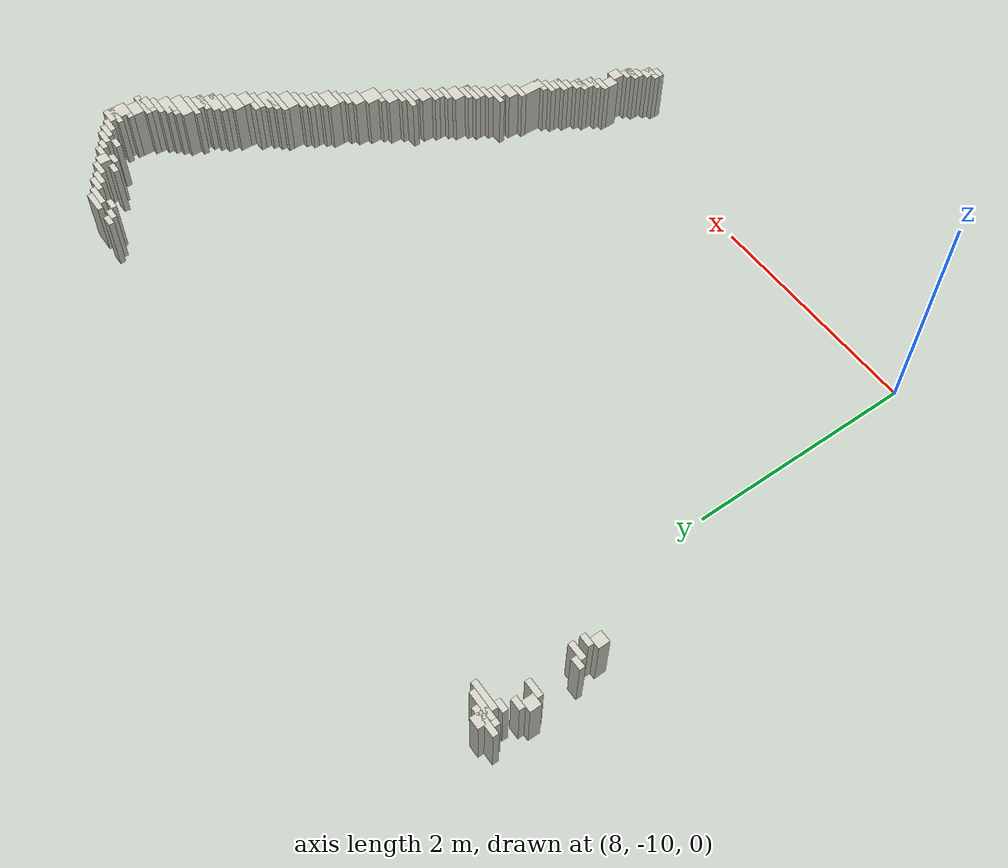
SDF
<sdf version="1.7">
 <world name="my_map_world">
  <model name="wall_392">
   <static>1</static>
   <pose>7.5 -5.625 0.25 0 -0 0</pose>
   <link name="link">
    <collision name="collision"><geometry><box><size>0.1 0.15 0.5</size></box></geometry></collision>
    <visual name="visual">
     <geometry><box><size>0.1 0.15 0.5</size></box></geometry>
     <material>
      <script><uri>file://media/materials/scripts/gazebo.material</uri><name>Gazebo/PaintedWall</name></script>
     </material>
    </visual>
   </link>
  </model>
  <model name="wall_393">
   <static>1</static>
   <pose>12.8 -5.575 0.25 0 -0 0</pose>
   <link name="link">
    <collision name="collision"><geometry><box><size>0.1 0.05 0.5</size></box></geometry></collision>
    <visual name="visual">
     <geometry><box><size>0.1 0.05 0.5</size></box></geometry>
     <material>
      <script><uri>file://media/materials/scripts/gazebo.material</uri><name>Gazebo/PaintedWall</name></script>
     </material>
    </visual>
   </link>
  </model>
  <model name="wall_394">
   <static>1</static>
   <pose>13.05 -5.575 0.25 0 -0 0</pose>
   <link name="link">
    <collision name="collision"><geometry><box><size>0.2 0.05 0.5</size></box></geometry></collision>
    <visual name="visual">
     <geometry><box><size>0.2 0.05 0.5</size></box></geometry>
     <material>
      <script><uri>file://media/materials/scripts/gazebo.material</uri><name>Gazebo/PaintedWall</name></script>
     </material>
    </visual>
   </link>
  </model>
  <model name="wall_395">
   <static>1</static>
   <pose>7.475 -5.625 0.25 0 -0 0</pose>
   <link name="link">
    <collision name="collision"><geometry><box><size>0.25 0.05 0.5</size></box></geometry></collision>
    <visual name="visual">
     <geometry><box><size>0.25 0.05 0.5</size></box></geometry>
     <material>
      <script><uri>file://media/materials/scripts/gazebo.material</uri><name>Gazebo/PaintedWall</name></script>
     </material>
    </visual>
   </link>
  </model>
  <model name="wall_396">
   <static>1</static>
   <pose>12.85 -5.625 0.25 0 -0 0</pose>
   <link name="link">
    <collision name="collision"><geometry><box><size>0.1 0.05 0.5</size></box></geometry></collision>
    <visual name="visual">
     <geometry><box><size>0.1 0.05 0.5</size></box></geometry>
     <material>
      <script><uri>file://media/materials/scripts/gazebo.material</uri><name>Gazebo/PaintedWall</name></script>
     </material>
    </visual>
   </link>
  </model>
  <model name="wall_397">
   <static>1</static>
   <pose>13.1 -5.625 0.25 0 -0 0</pose>
   <link name="link">
    <collision name="collision"><geometry><box><size>0.2 0.05 0.5</size></box></geometry></collision>
    <visual name="visual">
     <geometry><box><size>0.2 0.05 0.5</size></box></geometry>
     <material>
      <script><uri>file://media/materials/scripts/gazebo.material</uri><name>Gazebo/PaintedWall</name></script>
     </material>
    </visual>
   </link>
  </model>
  <model name="wall_398">
   <static>1</static>
   <pose>7.55 -5.675 0.25 0 -0 0</pose>
   <link name="link">
    <collision name="collision"><geometry><box><size>0.3 0.05 0.5</size></box></geometry></collision>
    <visual name="visual">
     <geometry><box><size>0.3 0.05 0.5</size></box></geometry>
     <material>
      <script><uri>file://media/materials/scripts/gazebo.material</uri><name>Gazebo/PaintedWall</name></script>
     </material>
    </visual>
   </link>
  </model>
  <model name="wall_399">
   <static>1</static>
   <pose>12.95 -5.675 0.25 0 -0 0</pose>
   <link name="link">
    <collision name="collision"><geometry><box><size>0.1 0.05 0.5</size></box></geometry></collision>
    <visual name="visual">
     <geometry><box><size>0.1 0.05 0.5</size></box></geometry>
     <material>
      <script><uri>file://media/materials/scripts/gazebo.material</uri><name>Gazebo/PaintedWall</name></script>
     </material>
    </visual>
   </link>
  </model>
  <model name="wall_400">
   <static>1</static>
   <pose>13.225 -5.675 0.25 0 -0 0</pose>
   <link name="link">
    <collision name="collision"><geometry><box><size>0.15 0.05 0.5</size></box></geometry></collision>
    <visual name="visual">
     <geometry><box><size>0.15 0.05 0.5</size></box></geometry>
     <material>
      <script><uri>file://media/materials/scripts/gazebo.material</uri><name>Gazebo/PaintedWall</name></script>
     </material>
    </visual>
   </link>
  </model>
  <model name="wall_401">
   <static>1</static>
   <pose>7.625 -5.725 0.25 0 -0 0</pose>
   <link name="link">
    <collision name="collision"><geometry><box><size>0.25 0.05 0.5</size></box></geometry></collision>
    <visual name="visual">
     <geometry><box><size>0.25 0.05 0.5</size></box></geometry>
     <material>
      <script><uri>file://media/materials/scripts/gazebo.material</uri><name>Gazebo/PaintedWall</name></script>
     </material>
    </visual>
   </link>
  </model>
  <model name="wall_402">
   <static>1</static>
   <pose>13.275 -5.725 0.25 0 -0 0</pose>
   <link name="link">
    <collision name="collision"><geometry><box><size>0.15 0.05 0.5</size></box></geometry></collision>
    <visual name="visual">
     <geometry><box><size>0.15 0.05 0.5</size></box></geometry>
     <material>
      <script><uri>file://media/materials/scripts/gazebo.material</uri><name>Gazebo/PaintedWall</name></script>
     </material>
    </visual>
   </link>
  </model>
  <model name="wall_403">
   <static>1</static>
   <pose>7.5 -5.775 0.25 0 -0 0</pose>
   <link name="link">
    <collision name="collision"><geometry><box><size>0.1 0.05 0.5</size></box></geometry></collision>
    <visual name="visual">
     <geometry><box><size>0.1 0.05 0.5</size></box></geometry>
     <material>
      <script><uri>file://media/materials/scripts/gazebo.material</uri><name>Gazebo/PaintedWall</name></script>
     </material>
    </visual>
   </link>
  </model>
  <model name="wall_404">
   <static>1</static>
   <pose>13.375 -5.775 0.25 0 -0 0</pose>
   <link name="link">
    <collision name="collision"><geometry><box><size>0.15 0.05 0.5</size></box></geometry></collision>
    <visual name="visual">
     <geometry><box><size>0.15 0.05 0.5</size></box></geometry>
     <material>
      <script><uri>file://media/materials/scripts/gazebo.material</uri><name>Gazebo/PaintedWall</name></script>
     </material>
    </visual>
   </link>
  </model>
  <model name="wall_405">
   <static>1</static>
   <pose>13.45 -5.85 0.25 0 -0 0</pose>
   <link name="link">
    <collision name="collision"><geometry><box><size>0.1 0.1 0.5</size></box></geometry></collision>
    <visual name="visual">
     <geometry><box><size>0.1 0.1 0.5</size></box></geometry>
     <material>
      <script><uri>file://media/materials/scripts/gazebo.material</uri><name>Gazebo/PaintedWall</name></script>
     </material>
    </visual>
   </link>
  </model>
  <model name="wall_406">
   <static>1</static>
   <pose>7.45 -5.875 0.25 0 -0 0</pose>
   <link name="link">
    <collision name="collision"><geometry><box><size>0.1 0.05 0.5</size></box></geometry></collision>
    <visual name="visual">
     <geometry><box><size>0.1 0.05 0.5</size></box></geometry>
     <material>
      <script><uri>file://media/materials/scripts/gazebo.material</uri><name>Gazebo/PaintedWall</name></script>
     </material>
    </visual>
   </link>
  </model>
  <model name="wall_407">
   <static>1</static>
   <pose>13.3 -5.875 0.25 0 -0 0</pose>
   <link name="link">
    <collision name="collision"><geometry><box><size>0.1 0.05 0.5</size></box></geometry></collision>
    <visual name="visual">
     <geometry><box><size>0.1 0.05 0.5</size></box></geometry>
     <material>
      <script><uri>file://media/materials/scripts/gazebo.material</uri><name>Gazebo/PaintedWall</name></script>
     </material>
    </visual>
   </link>
  </model>
  <model name="wall_408">
   <static>1</static>
   <pose>13.55 -5.875 0.25 0 -0 0</pose>
   <link name="link">
    <collision name="collision"><geometry><box><size>0.1 0.05 0.5</size></box></geometry></collision>
    <visual name="visual">
     <geometry><box><size>0.1 0.05 0.5</size></box></geometry>
     <material>
      <script><uri>file://media/materials/scripts/gazebo.material</uri><name>Gazebo/PaintedWall</name></script>
     </material>
    </visual>
   </link>
  </model>
  <model name="wall_409">
   <static>1</static>
   <pose>7.4 -5.95 0.25 0 -0 0</pose>
   <link name="link">
    <collision name="collision"><geometry><box><size>0.1 0.1 0.5</size></box></geometry></collision>
    <visual name="visual">
     <geometry><box><size>0.1 0.1 0.5</size></box></geometry>
     <material>
      <script><uri>file://media/materials/scripts/gazebo.material</uri><name>Gazebo/PaintedWall</name></script>
     </material>
    </visual>
   </link>
  </model>
  <model name="wall_410">
   <static>1</static>
   <pose>13.4 -5.925 0.25 0 -0 0</pose>
   <link name="link">
    <collision name="collision"><geometry><box><size>0.1 0.05 0.5</size></box></geometry></collision>
    <visual name="visual">
     <geometry><box><size>0.1 0.05 0.5</size></box></geometry>
     <material>
      <script><uri>file://media/materials/scripts/gazebo.material</uri><name>Gazebo/PaintedWall</name></script>
     </material>
    </visual>
   </link>
  </model>
  <model name="wall_411">
   <static>1</static>
   <pose>13.6 -5.925 0.25 0 -0 0</pose>
   <link name="link">
    <collision name="collision"><geometry><box><size>0.1 0.05 0.5</size></box></geometry></collision>
    <visual name="visual">
     <geometry><box><size>0.1 0.05 0.5</size></box></geometry>
     <material>
      <script><uri>file://media/materials/scripts/gazebo.material</uri><name>Gazebo/PaintedWall</name></script>
     </material>
    </visual>
   </link>
  </model>
  <model name="wall_413">
   <static>1</static>
   <pose>13.675 -5.975 0.25 0 -0 0</pose>
   <link name="link">
    <collision name="collision"><geometry><box><size>0.15 0.05 0.5</size></box></geometry></collision>
    <visual name="visual">
     <geometry><box><size>0.15 0.05 0.5</size></box></geometry>
     <material>
      <script><uri>file://media/materials/scripts/gazebo.material</uri><name>Gazebo/PaintedWall</name></script>
     </material>
    </visual>
   </link>
  </model>
  <model name="wall_415">
   <static>1</static>
   <pose>7.475 -6.025 0.25 0 -0 0</pose>
   <link name="link">
    <collision name="collision"><geometry><box><size>0.15 0.05 0.5</size></box></geometry></collision>
    <visual name="visual">
     <geometry><box><size>0.15 0.05 0.5</size></box></geometry>
     <material>
      <script><uri>file://media/materials/scripts/gazebo.material</uri><name>Gazebo/PaintedWall</name></script>
     </material>
    </visual>
   </link>
  </model>
  <model name="wall_416">
   <static>1</static>
   <pose>13.55 -6.025 0.25 0 -0 0</pose>
   <link name="link">
    <collision name="collision"><geometry><box><size>0.1 0.05 0.5</size></box></geometry></collision>
    <visual name="visual">
     <geometry><box><size>0.1 0.05 0.5</size></box></geometry>
     <material>
      <script><uri>file://media/materials/scripts/gazebo.material</uri><name>Gazebo/PaintedWall</name></script>
     </material>
    </visual>
   </link>
  </model>
  <model name="wall_417">
   <static>1</static>
   <pose>13.725 -6.025 0.25 0 -0 0</pose>
   <link name="link">
    <collision name="collision"><geometry><box><size>0.15 0.05 0.5</size></box></geometry></collision>
    <visual name="visual">
     <geometry><box><size>0.15 0.05 0.5</size></box></geometry>
     <material>
      <script><uri>file://media/materials/scripts/gazebo.material</uri><name>Gazebo/PaintedWall</name></script>
     </material>
    </visual>
   </link>
  </model>
  <model name="wall_418">
   <static>1</static>
   <pose>13.775 -6.075 0.25 0 -0 0</pose>
   <link name="link">
    <collision name="collision"><geometry><box><size>0.15 0.05 0.5</size></box></geometry></collision>
    <visual name="visual">
     <geometry><box><size>0.15 0.05 0.5</size></box></geometry>
     <material>
      <script><uri>file://media/materials/scripts/gazebo.material</uri><name>Gazebo/PaintedWall</name></script>
     </material>
    </visual>
   </link>
  </model>
  <model name="wall_420">
   <static>1</static>
   <pose>13.875 -6.2 0.25 0 -0 0</pose>
   <link name="link">
    <collision name="collision"><geometry><box><size>0.15 0.2 0.5</size></box></geometry></collision>
    <visual name="visual">
     <geometry><box><size>0.15 0.2 0.5</size></box></geometry>
     <material>
      <script><uri>file://media/materials/scripts/gazebo.material</uri><name>Gazebo/PaintedWall</name></script>
     </material>
    </visual>
   </link>
  </model>
  <model name="wall_422">
   <static>1</static>
   <pose>13.85 -6.175 0.25 0 -0 0</pose>
   <link name="link">
    <collision name="collision"><geometry><box><size>0.2 0.05 0.5</size></box></geometry></collision>
    <visual name="visual">
     <geometry><box><size>0.2 0.05 0.5</size></box></geometry>
     <material>
      <script><uri>file://media/materials/scripts/gazebo.material</uri><name>Gazebo/PaintedWall</name></script>
     </material>
    </visual>
   </link>
  </model>
  <model name="wall_423">
   <static>1</static>
   <pose>13.85 -6.275 0.25 0 -0 0</pose>
   <link name="link">
    <collision name="collision"><geometry><box><size>0.2 0.05 0.5</size></box></geometry></collision>
    <visual name="visual">
     <geometry><box><size>0.2 0.05 0.5</size></box></geometry>
     <material>
      <script><uri>file://media/materials/scripts/gazebo.material</uri><name>Gazebo/PaintedWall</name></script>
     </material>
    </visual>
   </link>
  </model>
  <model name="wall_425">
   <static>1</static>
   <pose>13.825 -6.4 0.25 0 -0 0</pose>
   <link name="link">
    <collision name="collision"><geometry><box><size>0.15 0.2 0.5</size></box></geometry></collision>
    <visual name="visual">
     <geometry><box><size>0.15 0.2 0.5</size></box></geometry>
     <material>
      <script><uri>file://media/materials/scripts/gazebo.material</uri><name>Gazebo/PaintedWall</name></script>
     </material>
    </visual>
   </link>
  </model>
  <model name="wall_427">
   <static>1</static>
   <pose>7.45 -6.375 0.25 0 -0 0</pose>
   <link name="link">
    <collision name="collision"><geometry><box><size>0.1 0.05 0.5</size></box></geometry></collision>
    <visual name="visual">
     <geometry><box><size>0.1 0.05 0.5</size></box></geometry>
     <material>
      <script><uri>file://media/materials/scripts/gazebo.material</uri><name>Gazebo/PaintedWall</name></script>
     </material>
    </visual>
   </link>
  </model>
  <model name="wall_428">
   <static>1</static>
   <pose>7.525 -6.425 0.25 0 -0 0</pose>
   <link name="link">
    <collision name="collision"><geometry><box><size>0.15 0.05 0.5</size></box></geometry></collision>
    <visual name="visual">
     <geometry><box><size>0.15 0.05 0.5</size></box></geometry>
     <material>
      <script><uri>file://media/materials/scripts/gazebo.material</uri><name>Gazebo/PaintedWall</name></script>
     </material>
    </visual>
   </link>
  </model>
  <model name="wall_429">
   <static>1</static>
   <pose>13.825 -6.425 0.25 0 -0 0</pose>
   <link name="link">
    <collision name="collision"><geometry><box><size>0.25 0.05 0.5</size></box></geometry></collision>
    <visual name="visual">
     <geometry><box><size>0.25 0.05 0.5</size></box></geometry>
     <material>
      <script><uri>file://media/materials/scripts/gazebo.material</uri><name>Gazebo/PaintedWall</name></script>
     </material>
    </visual>
   </link>
  </model>
  <model name="wall_430">
   <static>1</static>
   <pose>13.8 -6.475 0.25 0 -0 0</pose>
   <link name="link">
    <collision name="collision"><geometry><box><size>0.2 0.05 0.5</size></box></geometry></collision>
    <visual name="visual">
     <geometry><box><size>0.2 0.05 0.5</size></box></geometry>
     <material>
      <script><uri>file://media/materials/scripts/gazebo.material</uri><name>Gazebo/PaintedWall</name></script>
     </material>
    </visual>
   </link>
  </model>
  <model name="wall_431">
   <static>1</static>
   <pose>7.55 -6.525 0.25 0 -0 0</pose>
   <link name="link">
    <collision name="collision"><geometry><box><size>0.1 0.05 0.5</size></box></geometry></collision>
    <visual name="visual">
     <geometry><box><size>0.1 0.05 0.5</size></box></geometry>
     <material>
      <script><uri>file://media/materials/scripts/gazebo.material</uri><name>Gazebo/PaintedWall</name></script>
     </material>
    </visual>
   </link>
  </model>
  <model name="wall_432">
   <static>1</static>
   <pose>13.75 -6.525 0.25 0 -0 0</pose>
   <link name="link">
    <collision name="collision"><geometry><box><size>0.2 0.05 0.5</size></box></geometry></collision>
    <visual name="visual">
     <geometry><box><size>0.2 0.05 0.5</size></box></geometry>
     <material>
      <script><uri>file://media/materials/scripts/gazebo.material</uri><name>Gazebo/PaintedWall</name></script>
     </material>
    </visual>
   </link>
  </model>
  <model name="wall_433">
   <static>1</static>
   <pose>7.5 -6.6 0.25 0 -0 0</pose>
   <link name="link">
    <collision name="collision"><geometry><box><size>0.1 0.1 0.5</size></box></geometry></collision>
    <visual name="visual">
     <geometry><box><size>0.1 0.1 0.5</size></box></geometry>
     <material>
      <script><uri>file://media/materials/scripts/gazebo.material</uri><name>Gazebo/PaintedWall</name></script>
     </material>
    </visual>
   </link>
  </model>
  <model name="wall_434">
   <static>1</static>
   <pose>13.7 -6.6 0.25 0 -0 0</pose>
   <link name="link">
    <collision name="collision"><geometry><box><size>0.2 0.1 0.5</size></box></geometry></collision>
    <visual name="visual">
     <geometry><box><size>0.2 0.1 0.5</size></box></geometry>
     <material>
      <script><uri>file://media/materials/scripts/gazebo.material</uri><name>Gazebo/PaintedWall</name></script>
     </material>
    </visual>
   </link>
  </model>
  <model name="wall_436">
   <static>1</static>
   <pose>13.675 -6.625 0.25 0 -0 0</pose>
   <link name="link">
    <collision name="collision"><geometry><box><size>0.25 0.05 0.5</size></box></geometry></collision>
    <visual name="visual">
     <geometry><box><size>0.25 0.05 0.5</size></box></geometry>
     <material>
      <script><uri>file://media/materials/scripts/gazebo.material</uri><name>Gazebo/PaintedWall</name></script>
     </material>
    </visual>
   </link>
  </model>
  <model name="wall_438">
   <static>1</static>
   <pose>13.625 -6.7 0.25 0 -0 0</pose>
   <link name="link">
    <collision name="collision"><geometry><box><size>0.25 0.1 0.5</size></box></geometry></collision>
    <visual name="visual">
     <geometry><box><size>0.25 0.1 0.5</size></box></geometry>
     <material>
      <script><uri>file://media/materials/scripts/gazebo.material</uri><name>Gazebo/PaintedWall</name></script>
     </material>
    </visual>
   </link>
  </model>
  <model name="wall_443">
   <static>1</static>
   <pose>13.575 -6.775 0.25 0 -0 0</pose>
   <link name="link">
    <collision name="collision"><geometry><box><size>0.25 0.05 0.5</size></box></geometry></collision>
    <visual name="visual">
     <geometry><box><size>0.25 0.05 0.5</size></box></geometry>
     <material>
      <script><uri>file://media/materials/scripts/gazebo.material</uri><name>Gazebo/PaintedWall</name></script>
     </material>
    </visual>
   </link>
  </model>
  <model name="wall_444">
   <static>1</static>
   <pose>13.575 -6.85 0.25 0 -0 0</pose>
   <link name="link">
    <collision name="collision"><geometry><box><size>0.15 0.1 0.5</size></box></geometry></collision>
    <visual name="visual">
     <geometry><box><size>0.15 0.1 0.5</size></box></geometry>
     <material>
      <script><uri>file://media/materials/scripts/gazebo.material</uri><name>Gazebo/PaintedWall</name></script>
     </material>
    </visual>
   </link>
  </model>
  <model name="wall_447">
   <static>1</static>
   <pose>13.55 -6.875 0.25 0 -0 0</pose>
   <link name="link">
    <collision name="collision"><geometry><box><size>0.2 0.05 0.5</size></box></geometry></collision>
    <visual name="visual">
     <geometry><box><size>0.2 0.05 0.5</size></box></geometry>
     <material>
      <script><uri>file://media/materials/scripts/gazebo.material</uri><name>Gazebo/PaintedWall</name></script>
     </material>
    </visual>
   </link>
  </model>
  <model name="wall_451">
   <static>1</static>
   <pose>13.5 -6.95 0.25 0 -0 0</pose>
   <link name="link">
    <collision name="collision"><geometry><box><size>0.2 0.1 0.5</size></box></geometry></collision>
    <visual name="visual">
     <geometry><box><size>0.2 0.1 0.5</size></box></geometry>
     <material>
      <script><uri>file://media/materials/scripts/gazebo.material</uri><name>Gazebo/PaintedWall</name></script>
     </material>
    </visual>
   </link>
  </model>
  <model name="wall_453">
   <static>1</static>
   <pose>13.475 -6.975 0.25 0 -0 0</pose>
   <link name="link">
    <collision name="collision"><geometry><box><size>0.25 0.05 0.5</size></box></geometry></collision>
    <visual name="visual">
     <geometry><box><size>0.25 0.05 0.5</size></box></geometry>
     <material>
      <script><uri>file://media/materials/scripts/gazebo.material</uri><name>Gazebo/PaintedWall</name></script>
     </material>
    </visual>
   </link>
  </model>
  <model name="wall_455">
   <static>1</static>
   <pose>13.45 -7.025 0.25 0 -0 0</pose>
   <link name="link">
    <collision name="collision"><geometry><box><size>0.2 0.05 0.5</size></box></geometry></collision>
    <visual name="visual">
     <geometry><box><size>0.2 0.05 0.5</size></box></geometry>
     <material>
      <script><uri>file://media/materials/scripts/gazebo.material</uri><name>Gazebo/PaintedWall</name></script>
     </material>
    </visual>
   </link>
  </model>
  <model name="wall_457">
   <static>1</static>
   <pose>13.4 -7.1 0.25 0 -0 0</pose>
   <link name="link">
    <collision name="collision"><geometry><box><size>0.2 0.1 0.5</size></box></geometry></collision>
    <visual name="visual">
     <geometry><box><size>0.2 0.1 0.5</size></box></geometry>
     <material>
      <script><uri>file://media/materials/scripts/gazebo.material</uri><name>Gazebo/PaintedWall</name></script>
     </material>
    </visual>
   </link>
  </model>
  <model name="wall_459">
   <static>1</static>
   <pose>13.375 -7.2 0.25 0 -0 0</pose>
   <link name="link">
    <collision name="collision"><geometry><box><size>0.15 0.1 0.5</size></box></geometry></collision>
    <visual name="visual">
     <geometry><box><size>0.15 0.1 0.5</size></box></geometry>
     <material>
      <script><uri>file://media/materials/scripts/gazebo.material</uri><name>Gazebo/PaintedWall</name></script>
     </material>
    </visual>
   </link>
  </model>
  <model name="wall_460">
   <static>1</static>
   <pose>13.325 -7.225 0.25 0 -0 0</pose>
   <link name="link">
    <collision name="collision"><geometry><box><size>0.25 0.05 0.5</size></box></geometry></collision>
    <visual name="visual">
     <geometry><box><size>0.25 0.05 0.5</size></box></geometry>
     <material>
      <script><uri>file://media/materials/scripts/gazebo.material</uri><name>Gazebo/PaintedWall</name></script>
     </material>
    </visual>
   </link>
  </model>
  <model name="wall_462">
   <static>1</static>
   <pose>13.3 -7.275 0.25 0 -0 0</pose>
   <link name="link">
    <collision name="collision"><geometry><box><size>0.2 0.05 0.5</size></box></geometry></collision>
    <visual name="visual">
     <geometry><box><size>0.2 0.05 0.5</size></box></geometry>
     <material>
      <script><uri>file://media/materials/scripts/gazebo.material</uri><name>Gazebo/PaintedWall</name></script>
     </material>
    </visual>
   </link>
  </model>
  <model name="wall_464">
   <static>1</static>
   <pose>13.25 -7.35 0.25 0 -0 0</pose>
   <link name="link">
    <collision name="collision"><geometry><box><size>0.2 0.1 0.5</size></box></geometry></collision>
    <visual name="visual">
     <geometry><box><size>0.2 0.1 0.5</size></box></geometry>
     <material>
      <script><uri>file://media/materials/scripts/gazebo.material</uri><name>Gazebo/PaintedWall</name></script>
     </material>
    </visual>
   </link>
  </model>
  <model name="wall_466">
   <static>1</static>
   <pose>13.225 -7.375 0.25 0 -0 0</pose>
   <link name="link">
    <collision name="collision"><geometry><box><size>0.25 0.05 0.5</size></box></geometry></collision>
    <visual name="visual">
     <geometry><box><size>0.25 0.05 0.5</size></box></geometry>
     <material>
      <script><uri>file://media/materials/scripts/gazebo.material</uri><name>Gazebo/PaintedWall</name></script>
     </material>
    </visual>
   </link>
  </model>
  <model name="wall_468">
   <static>1</static>
   <pose>13.175 -7.425 0.25 0 -0 0</pose>
   <link name="link">
    <collision name="collision"><geometry><box><size>0.25 0.05 0.5</size></box></geometry></collision>
    <visual name="visual">
     <geometry><box><size>0.25 0.05 0.5</size></box></geometry>
     <material>
      <script><uri>file://media/materials/scripts/gazebo.material</uri><name>Gazebo/PaintedWall</name></script>
     </material>
    </visual>
   </link>
  </model>
  <model name="wall_470">
   <static>1</static>
   <pose>13.15 -7.5 0.25 0 -0 0</pose>
   <link name="link">
    <collision name="collision"><geometry><box><size>0.2 0.1 0.5</size></box></geometry></collision>
    <visual name="visual">
     <geometry><box><size>0.2 0.1 0.5</size></box></geometry>
     <material>
      <script><uri>file://media/materials/scripts/gazebo.material</uri><name>Gazebo/PaintedWall</name></script>
     </material>
    </visual>
   </link>
  </model>
  <model name="wall_472">
   <static>1</static>
   <pose>13.1 -7.575 0.25 0 -0 0</pose>
   <link name="link">
    <collision name="collision"><geometry><box><size>0.2 0.05 0.5</size></box></geometry></collision>
    <visual name="visual">
     <geometry><box><size>0.2 0.05 0.5</size></box></geometry>
     <material>
      <script><uri>file://media/materials/scripts/gazebo.material</uri><name>Gazebo/PaintedWall</name></script>
     </material>
    </visual>
   </link>
  </model>
  <model name="wall_474">
   <static>1</static>
   <pose>13.05 -7.625 0.25 0 -0 0</pose>
   <link name="link">
    <collision name="collision"><geometry><box><size>0.2 0.05 0.5</size></box></geometry></collision>
    <visual name="visual">
     <geometry><box><size>0.2 0.05 0.5</size></box></geometry>
     <material>
      <script><uri>file://media/materials/scripts/gazebo.material</uri><name>Gazebo/PaintedWall</name></script>
     </material>
    </visual>
   </link>
  </model>
  <model name="wall_475">
   <static>1</static>
   <pose>13.025 -7.7 0.25 0 -0 0</pose>
   <link name="link">
    <collision name="collision"><geometry><box><size>0.15 0.1 0.5</size></box></geometry></collision>
    <visual name="visual">
     <geometry><box><size>0.15 0.1 0.5</size></box></geometry>
     <material>
      <script><uri>file://media/materials/scripts/gazebo.material</uri><name>Gazebo/PaintedWall</name></script>
     </material>
    </visual>
   </link>
  </model>
  <model name="wall_477">
   <static>1</static>
   <pose>13 -7.725 0.25 0 -0 0</pose>
   <link name="link">
    <collision name="collision"><geometry><box><size>0.2 0.05 0.5</size></box></geometry></collision>
    <visual name="visual">
     <geometry><box><size>0.2 0.05 0.5</size></box></geometry>
     <material>
      <script><uri>file://media/materials/scripts/gazebo.material</uri><name>Gazebo/PaintedWall</name></script>
     </material>
    </visual>
   </link>
  </model>
  <model name="wall_479">
   <static>1</static>
   <pose>12.95 -7.8 0.25 0 -0 0</pose>
   <link name="link">
    <collision name="collision"><geometry><box><size>0.2 0.1 0.5</size></box></geometry></collision>
    <visual name="visual">
     <geometry><box><size>0.2 0.1 0.5</size></box></geometry>
     <material>
      <script><uri>file://media/materials/scripts/gazebo.material</uri><name>Gazebo/PaintedWall</name></script>
     </material>
    </visual>
   </link>
  </model>
  <model name="wall_481">
   <static>1</static>
   <pose>12.925 -7.875 0.25 0 -0 0</pose>
   <link name="link">
    <collision name="collision"><geometry><box><size>0.15 0.05 0.5</size></box></geometry></collision>
    <visual name="visual">
     <geometry><box><size>0.15 0.05 0.5</size></box></geometry>
     <material>
      <script><uri>file://media/materials/scripts/gazebo.material</uri><name>Gazebo/PaintedWall</name></script>
     </material>
    </visual>
   </link>
  </model>
  <model name="wall_482">
   <static>1</static>
   <pose>12.875 -7.925 0.25 0 -0 0</pose>
   <link name="link">
    <collision name="collision"><geometry><box><size>0.15 0.05 0.5</size></box></geometry></collision>
    <visual name="visual">
     <geometry><box><size>0.15 0.05 0.5</size></box></geometry>
     <material>
      <script><uri>file://media/materials/scripts/gazebo.material</uri><name>Gazebo/PaintedWall</name></script>
     </material>
    </visual>
   </link>
  </model>
  <model name="wall_483">
   <static>1</static>
   <pose>12.825 -8 0.25 0 -0 0</pose>
   <link name="link">
    <collision name="collision"><geometry><box><size>0.15 0.1 0.5</size></box></geometry></collision>
    <visual name="visual">
     <geometry><box><size>0.15 0.1 0.5</size></box></geometry>
     <material>
      <script><uri>file://media/materials/scripts/gazebo.material</uri><name>Gazebo/PaintedWall</name></script>
     </material>
    </visual>
   </link>
  </model>
  <model name="wall_486">
   <static>1</static>
   <pose>12.775 -8.125 0.25 0 -0 0</pose>
   <link name="link">
    <collision name="collision"><geometry><box><size>0.15 0.15 0.5</size></box></geometry></collision>
    <visual name="visual">
     <geometry><box><size>0.15 0.15 0.5</size></box></geometry>
     <material>
      <script><uri>file://media/materials/scripts/gazebo.material</uri><name>Gazebo/PaintedWall</name></script>
     </material>
    </visual>
   </link>
  </model>
  <model name="wall_488">
   <static>1</static>
   <pose>12.75 -8.175 0.25 0 -0 0</pose>
   <link name="link">
    <collision name="collision"><geometry><box><size>0.2 0.05 0.5</size></box></geometry></collision>
    <visual name="visual">
     <geometry><box><size>0.2 0.05 0.5</size></box></geometry>
     <material>
      <script><uri>file://media/materials/scripts/gazebo.material</uri><name>Gazebo/PaintedWall</name></script>
     </material>
    </visual>
   </link>
  </model>
  <model name="wall_490">
   <static>1</static>
   <pose>12.675 -8.25 0.25 0 -0 0</pose>
   <link name="link">
    <collision name="collision"><geometry><box><size>0.15 0.1 0.5</size></box></geometry></collision>
    <visual name="visual">
     <geometry><box><size>0.15 0.1 0.5</size></box></geometry>
     <material>
      <script><uri>file://media/materials/scripts/gazebo.material</uri><name>Gazebo/PaintedWall</name></script>
     </material>
    </visual>
   </link>
  </model>
  <model name="wall_495">
   <static>1</static>
   <pose>12.625 -8.325 0.25 0 -0 0</pose>
   <link name="link">
    <collision name="collision"><geometry><box><size>0.15 0.05 0.5</size></box></geometry></collision>
    <visual name="visual">
     <geometry><box><size>0.15 0.05 0.5</size></box></geometry>
     <material>
      <script><uri>file://media/materials/scripts/gazebo.material</uri><name>Gazebo/PaintedWall</name></script>
     </material>
    </visual>
   </link>
  </model>
  <model name="wall_497">
   <static>1</static>
   <pose>12.55 -8.375 0.25 0 -0 0</pose>
   <link name="link">
    <collision name="collision"><geometry><box><size>0.2 0.05 0.5</size></box></geometry></collision>
    <visual name="visual">
     <geometry><box><size>0.2 0.05 0.5</size></box></geometry>
     <material>
      <script><uri>file://media/materials/scripts/gazebo.material</uri><name>Gazebo/PaintedWall</name></script>
     </material>
    </visual>
   </link>
  </model>
  <model name="wall_501">
   <static>1</static>
   <pose>12.575 -8.425 0.25 0 -0 0</pose>
   <link name="link">
    <collision name="collision"><geometry><box><size>0.15 0.05 0.5</size></box></geometry></collision>
    <visual name="visual">
     <geometry><box><size>0.15 0.05 0.5</size></box></geometry>
     <material>
      <script><uri>file://media/materials/scripts/gazebo.material</uri><name>Gazebo/PaintedWall</name></script>
     </material>
    </visual>
   </link>
  </model>
  <model name="wall_506">
   <static>1</static>
   <pose>12.525 -8.5 0.25 0 -0 0</pose>
   <link name="link">
    <collision name="collision"><geometry><box><size>0.15 0.1 0.5</size></box></geometry></collision>
    <visual name="visual">
     <geometry><box><size>0.15 0.1 0.5</size></box></geometry>
     <material>
      <script><uri>file://media/materials/scripts/gazebo.material</uri><name>Gazebo/PaintedWall</name></script>
     </material>
    </visual>
   </link>
  </model>
  <model name="wall_512">
   <static>1</static>
   <pose>12.475 -8.575 0.25 0 -0 0</pose>
   <link name="link">
    <collision name="collision"><geometry><box><size>0.15 0.05 0.5</size></box></geometry></collision>
    <visual name="visual">
     <geometry><box><size>0.15 0.05 0.5</size></box></geometry>
     <material>
      <script><uri>file://media/materials/scripts/gazebo.material</uri><name>Gazebo/PaintedWall</name></script>
     </material>
    </visual>
   </link>
  </model>
  <model name="wall_517">
   <static>1</static>
   <pose>12.45 -8.65 0.25 0 -0 0</pose>
   <link name="link">
    <collision name="collision"><geometry><box><size>0.1 0.1 0.5</size></box></geometry></collision>
    <visual name="visual">
     <geometry><box><size>0.1 0.1 0.5</size></box></geometry>
     <material>
      <script><uri>file://media/materials/scripts/gazebo.material</uri><name>Gazebo/PaintedWall</name></script>
     </material>
    </visual>
   </link>
  </model>
  <model name="wall_521">
   <static>1</static>
   <pose>12.425 -8.675 0.25 0 -0 0</pose>
   <link name="link">
    <collision name="collision"><geometry><box><size>0.15 0.05 0.5</size></box></geometry></collision>
    <visual name="visual">
     <geometry><box><size>0.15 0.05 0.5</size></box></geometry>
     <material>
      <script><uri>file://media/materials/scripts/gazebo.material</uri><name>Gazebo/PaintedWall</name></script>
     </material>
    </visual>
   </link>
  </model>
  <model name="wall_525">
   <static>1</static>
   <pose>12.375 -8.75 0.25 0 -0 0</pose>
   <link name="link">
    <collision name="collision"><geometry><box><size>0.15 0.1 0.5</size></box></geometry></collision>
    <visual name="visual">
     <geometry><box><size>0.15 0.1 0.5</size></box></geometry>
     <material>
      <script><uri>file://media/materials/scripts/gazebo.material</uri><name>Gazebo/PaintedWall</name></script>
     </material>
    </visual>
   </link>
  </model>
  <model name="wall_532">
   <static>1</static>
   <pose>12.325 -8.85 0.25 0 -0 0</pose>
   <link name="link">
    <collision name="collision"><geometry><box><size>0.15 0.1 0.5</size></box></geometry></collision>
    <visual name="visual">
     <geometry><box><size>0.15 0.1 0.5</size></box></geometry>
     <material>
      <script><uri>file://media/materials/scripts/gazebo.material</uri><name>Gazebo/PaintedWall</name></script>
     </material>
    </visual>
   </link>
  </model>
  <model name="wall_536">
   <static>1</static>
   <pose>12.3 -8.875 0.25 0 -0 0</pose>
   <link name="link">
    <collision name="collision"><geometry><box><size>0.2 0.05 0.5</size></box></geometry></collision>
    <visual name="visual">
     <geometry><box><size>0.2 0.05 0.5</size></box></geometry>
     <material>
      <script><uri>file://media/materials/scripts/gazebo.material</uri><name>Gazebo/PaintedWall</name></script>
     </material>
    </visual>
   </link>
  </model>
  <model name="wall_539">
   <static>1</static>
   <pose>12.275 -8.925 0.25 0 -0 0</pose>
   <link name="link">
    <collision name="collision"><geometry><box><size>0.15 0.05 0.5</size></box></geometry></collision>
    <visual name="visual">
     <geometry><box><size>0.15 0.05 0.5</size></box></geometry>
     <material>
      <script><uri>file://media/materials/scripts/gazebo.material</uri><name>Gazebo/PaintedWall</name></script>
     </material>
    </visual>
   </link>
  </model>
  <model name="wall_541">
   <static>1</static>
   <pose>12.225 -8.975 0.25 0 -0 0</pose>
   <link name="link">
    <collision name="collision"><geometry><box><size>0.15 0.05 0.5</size></box></geometry></collision>
    <visual name="visual">
     <geometry><box><size>0.15 0.05 0.5</size></box></geometry>
     <material>
      <script><uri>file://media/materials/scripts/gazebo.material</uri><name>Gazebo/PaintedWall</name></script>
     </material>
    </visual>
   </link>
  </model>
  <model name="wall_543">
   <static>1</static>
   <pose>12.15 -9.025 0.25 0 -0 0</pose>
   <link name="link">
    <collision name="collision"><geometry><box><size>0.2 0.05 0.5</size></box></geometry></collision>
    <visual name="visual">
     <geometry><box><size>0.2 0.05 0.5</size></box></geometry>
     <material>
      <script><uri>file://media/materials/scripts/gazebo.material</uri><name>Gazebo/PaintedWall</name></script>
     </material>
    </visual>
   </link>
  </model>
  <model name="wall_545">
   <static>1</static>
   <pose>12.175 -9.075 0.25 0 -0 0</pose>
   <link name="link">
    <collision name="collision"><geometry><box><size>0.15 0.05 0.5</size></box></geometry></collision>
    <visual name="visual">
     <geometry><box><size>0.15 0.05 0.5</size></box></geometry>
     <material>
      <script><uri>file://media/materials/scripts/gazebo.material</uri><name>Gazebo/PaintedWall</name></script>
     </material>
    </visual>
   </link>
  </model>
  <model name="wall_547">
   <static>1</static>
   <pose>12.125 -9.15 0.25 0 -0 0</pose>
   <link name="link">
    <collision name="collision"><geometry><box><size>0.15 0.1 0.5</size></box></geometry></collision>
    <visual name="visual">
     <geometry><box><size>0.15 0.1 0.5</size></box></geometry>
     <material>
      <script><uri>file://media/materials/scripts/gazebo.material</uri><name>Gazebo/PaintedWall</name></script>
     </material>
    </visual>
   </link>
  </model>
  <model name="wall_549">
   <static>1</static>
   <pose>12.075 -9.225 0.25 0 -0 0</pose>
   <link name="link">
    <collision name="collision"><geometry><box><size>0.15 0.05 0.5</size></box></geometry></collision>
    <visual name="visual">
     <geometry><box><size>0.15 0.05 0.5</size></box></geometry>
     <material>
      <script><uri>file://media/materials/scripts/gazebo.material</uri><name>Gazebo/PaintedWall</name></script>
     </material>
    </visual>
   </link>
  </model>
  <model name="wall_551">
   <static>1</static>
   <pose>12.05 -9.35 0.25 0 -0 0</pose>
   <link name="link">
    <collision name="collision"><geometry><box><size>0.1 0.2 0.5</size></box></geometry></collision>
    <visual name="visual">
     <geometry><box><size>0.1 0.2 0.5</size></box></geometry>
     <material>
      <script><uri>file://media/materials/scripts/gazebo.material</uri><name>Gazebo/PaintedWall</name></script>
     </material>
    </visual>
   </link>
  </model>
  <model name="wall_555">
   <static>1</static>
   <pose>12.025 -9.425 0.25 0 -0 0</pose>
   <link name="link">
    <collision name="collision"><geometry><box><size>0.15 0.05 0.5</size></box></geometry></collision>
    <visual name="visual">
     <geometry><box><size>0.15 0.05 0.5</size></box></geometry>
     <material>
      <script><uri>file://media/materials/scripts/gazebo.material</uri><name>Gazebo/PaintedWall</name></script>
     </material>
    </visual>
   </link>
  </model>
  <model name="wall_557">
   <static>1</static>
   <pose>11.975 -9.475 0.25 0 -0 0</pose>
   <link name="link">
    <collision name="collision"><geometry><box><size>0.15 0.05 0.5</size></box></geometry></collision>
    <visual name="visual">
     <geometry><box><size>0.15 0.05 0.5</size></box></geometry>
     <material>
      <script><uri>file://media/materials/scripts/gazebo.material</uri><name>Gazebo/PaintedWall</name></script>
     </material>
    </visual>
   </link>
  </model>
  <model name="wall_559">
   <static>1</static>
   <pose>11.95 -9.55 0.25 0 -0 0</pose>
   <link name="link">
    <collision name="collision"><geometry><box><size>0.1 0.1 0.5</size></box></geometry></collision>
    <visual name="visual">
     <geometry><box><size>0.1 0.1 0.5</size></box></geometry>
     <material>
      <script><uri>file://media/materials/scripts/gazebo.material</uri><name>Gazebo/PaintedWall</name></script>
     </material>
    </visual>
   </link>
  </model>
  <model name="wall_561">
   <static>1</static>
   <pose>11.925 -9.575 0.25 0 -0 0</pose>
   <link name="link">
    <collision name="collision"><geometry><box><size>0.15 0.05 0.5</size></box></geometry></collision>
    <visual name="visual">
     <geometry><box><size>0.15 0.05 0.5</size></box></geometry>
     <material>
      <script><uri>file://media/materials/scripts/gazebo.material</uri><name>Gazebo/PaintedWall</name></script>
     </material>
    </visual>
   </link>
  </model>
  <model name="wall_563">
   <static>1</static>
   <pose>11.9 -9.625 0.25 0 -0 0</pose>
   <link name="link">
    <collision name="collision"><geometry><box><size>0.1 0.05 0.5</size></box></geometry></collision>
    <visual name="visual">
     <geometry><box><size>0.1 0.05 0.5</size></box></geometry>
     <material>
      <script><uri>file://media/materials/scripts/gazebo.material</uri><name>Gazebo/PaintedWall</name></script>
     </material>
    </visual>
   </link>
  </model>
  <model name="wall_566">
   <static>1</static>
   <pose>11.85 -9.7 0.25 0 -0 0</pose>
   <link name="link">
    <collision name="collision"><geometry><box><size>0.1 0.1 0.5</size></box></geometry></collision>
    <visual name="visual">
     <geometry><box><size>0.1 0.1 0.5</size></box></geometry>
     <material>
      <script><uri>file://media/materials/scripts/gazebo.material</uri><name>Gazebo/PaintedWall</name></script>
     </material>
    </visual>
   </link>
  </model>
  <model name="wall_567">
   <static>1</static>
   <pose>11.825 -9.725 0.25 0 -0 0</pose>
   <link name="link">
    <collision name="collision"><geometry><box><size>0.15 0.05 0.5</size></box></geometry></collision>
    <visual name="visual">
     <geometry><box><size>0.15 0.05 0.5</size></box></geometry>
     <material>
      <script><uri>file://media/materials/scripts/gazebo.material</uri><name>Gazebo/PaintedWall</name></script>
     </material>
    </visual>
   </link>
  </model>
  <model name="wall_568">
   <static>1</static>
   <pose>11.8 -9.8 0.25 0 -0 0</pose>
   <link name="link">
    <collision name="collision"><geometry><box><size>0.1 0.1 0.5</size></box></geometry></collision>
    <visual name="visual">
     <geometry><box><size>0.1 0.1 0.5</size></box></geometry>
     <material>
      <script><uri>file://media/materials/scripts/gazebo.material</uri><name>Gazebo/PaintedWall</name></script>
     </material>
    </visual>
   </link>
  </model>
  <model name="wall_569">
   <static>1</static>
   <pose>11.775 -9.825 0.25 0 -0 0</pose>
   <link name="link">
    <collision name="collision"><geometry><box><size>0.15 0.05 0.5</size></box></geometry></collision>
    <visual name="visual">
     <geometry><box><size>0.15 0.05 0.5</size></box></geometry>
     <material>
      <script><uri>file://media/materials/scripts/gazebo.material</uri><name>Gazebo/PaintedWall</name></script>
     </material>
    </visual>
   </link>
  </model>
  <model name="wall_571">
   <static>1</static>
   <pose>11.725 -9.875 0.25 0 -0 0</pose>
   <link name="link">
    <collision name="collision"><geometry><box><size>0.15 0.05 0.5</size></box></geometry></collision>
    <visual name="visual">
     <geometry><box><size>0.15 0.05 0.5</size></box></geometry>
     <material>
      <script><uri>file://media/materials/scripts/gazebo.material</uri><name>Gazebo/PaintedWall</name></script>
     </material>
    </visual>
   </link>
  </model>
  <model name="wall_573">
   <static>1</static>
   <pose>11.7 -9.95 0.25 0 -0 0</pose>
   <link name="link">
    <collision name="collision"><geometry><box><size>0.1 0.1 0.5</size></box></geometry></collision>
    <visual name="visual">
     <geometry><box><size>0.1 0.1 0.5</size></box></geometry>
     <material>
      <script><uri>file://media/materials/scripts/gazebo.material</uri><name>Gazebo/PaintedWall</name></script>
     </material>
    </visual>
   </link>
  </model>
  <model name="wall_576">
   <static>1</static>
   <pose>11.75 -10.05 0.25 0 -0 0</pose>
   <link name="link">
    <collision name="collision"><geometry><box><size>0.1 0.1 0.5</size></box></geometry></collision>
    <visual name="visual">
     <geometry><box><size>0.1 0.1 0.5</size></box></geometry>
     <material>
      <script><uri>file://media/materials/scripts/gazebo.material</uri><name>Gazebo/PaintedWall</name></script>
     </material>
    </visual>
   </link>
  </model>
  <model name="wall_580">
   <static>1</static>
   <pose>11.7 -10.15 0.25 0 -0 0</pose>
   <link name="link">
    <collision name="collision"><geometry><box><size>0.1 0.1 0.5</size></box></geometry></collision>
    <visual name="visual">
     <geometry><box><size>0.1 0.1 0.5</size></box></geometry>
     <material>
      <script><uri>file://media/materials/scripts/gazebo.material</uri><name>Gazebo/PaintedWall</name></script>
     </material>
    </visual>
   </link>
  </model>
  <model name="wall_583">
   <static>1</static>
   <pose>11.675 -10.175 0.25 0 -0 0</pose>
   <link name="link">
    <collision name="collision"><geometry><box><size>0.15 0.05 0.5</size></box></geometry></collision>
    <visual name="visual">
     <geometry><box><size>0.15 0.05 0.5</size></box></geometry>
     <material>
      <script><uri>file://media/materials/scripts/gazebo.material</uri><name>Gazebo/PaintedWall</name></script>
     </material>
    </visual>
   </link>
  </model>
  <model name="wall_585">
   <static>1</static>
   <pose>11.65 -10.225 0.25 0 -0 0</pose>
   <link name="link">
    <collision name="collision"><geometry><box><size>0.1 0.05 0.5</size></box></geometry></collision>
    <visual name="visual">
     <geometry><box><size>0.1 0.05 0.5</size></box></geometry>
     <material>
      <script><uri>file://media/materials/scripts/gazebo.material</uri><name>Gazebo/PaintedWall</name></script>
     </material>
    </visual>
   </link>
  </model>
  <model name="wall_587">
   <static>1</static>
   <pose>11.6 -10.3 0.25 0 -0 0</pose>
   <link name="link">
    <collision name="collision"><geometry><box><size>0.1 0.1 0.5</size></box></geometry></collision>
    <visual name="visual">
     <geometry><box><size>0.1 0.1 0.5</size></box></geometry>
     <material>
      <script><uri>file://media/materials/scripts/gazebo.material</uri><name>Gazebo/PaintedWall</name></script>
     </material>
    </visual>
   </link>
  </model>
  <model name="wall_589">
   <static>1</static>
   <pose>11.575 -10.325 0.25 0 -0 0</pose>
   <link name="link">
    <collision name="collision"><geometry><box><size>0.15 0.05 0.5</size></box></geometry></collision>
    <visual name="visual">
     <geometry><box><size>0.15 0.05 0.5</size></box></geometry>
     <material>
      <script><uri>file://media/materials/scripts/gazebo.material</uri><name>Gazebo/PaintedWall</name></script>
     </material>
    </visual>
   </link>
  </model>
  <model name="wall_592">
   <static>1</static>
   <pose>11.55 -10.375 0.25 0 -0 0</pose>
   <link name="link">
    <collision name="collision"><geometry><box><size>0.1 0.05 0.5</size></box></geometry></collision>
    <visual name="visual">
     <geometry><box><size>0.1 0.05 0.5</size></box></geometry>
     <material>
      <script><uri>file://media/materials/scripts/gazebo.material</uri><name>Gazebo/PaintedWall</name></script>
     </material>
    </visual>
   </link>
  </model>
 </world>
</sdf>
